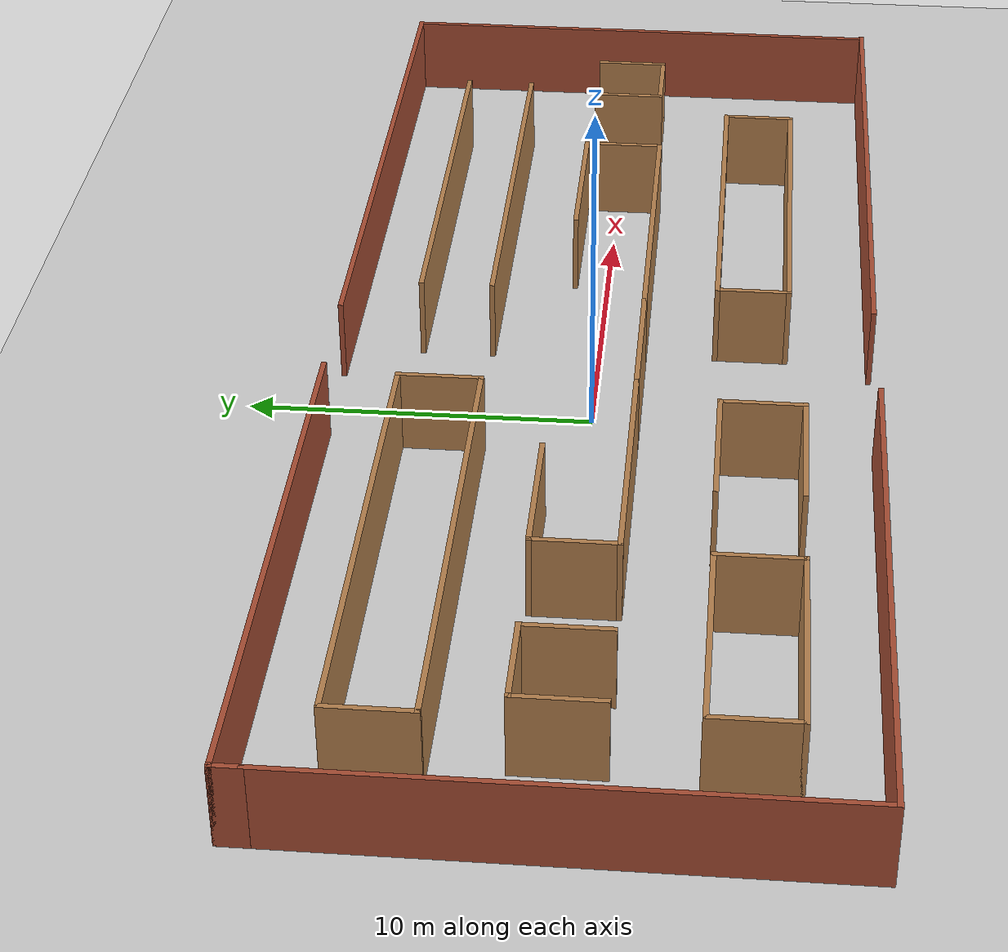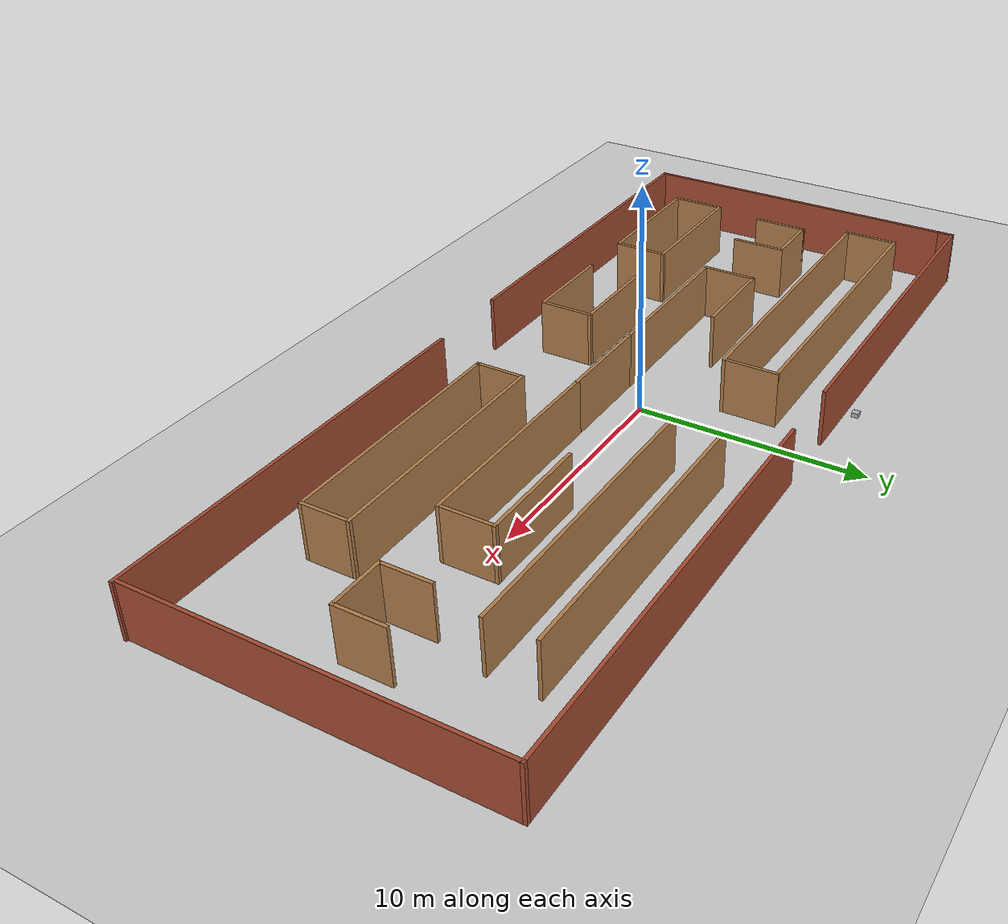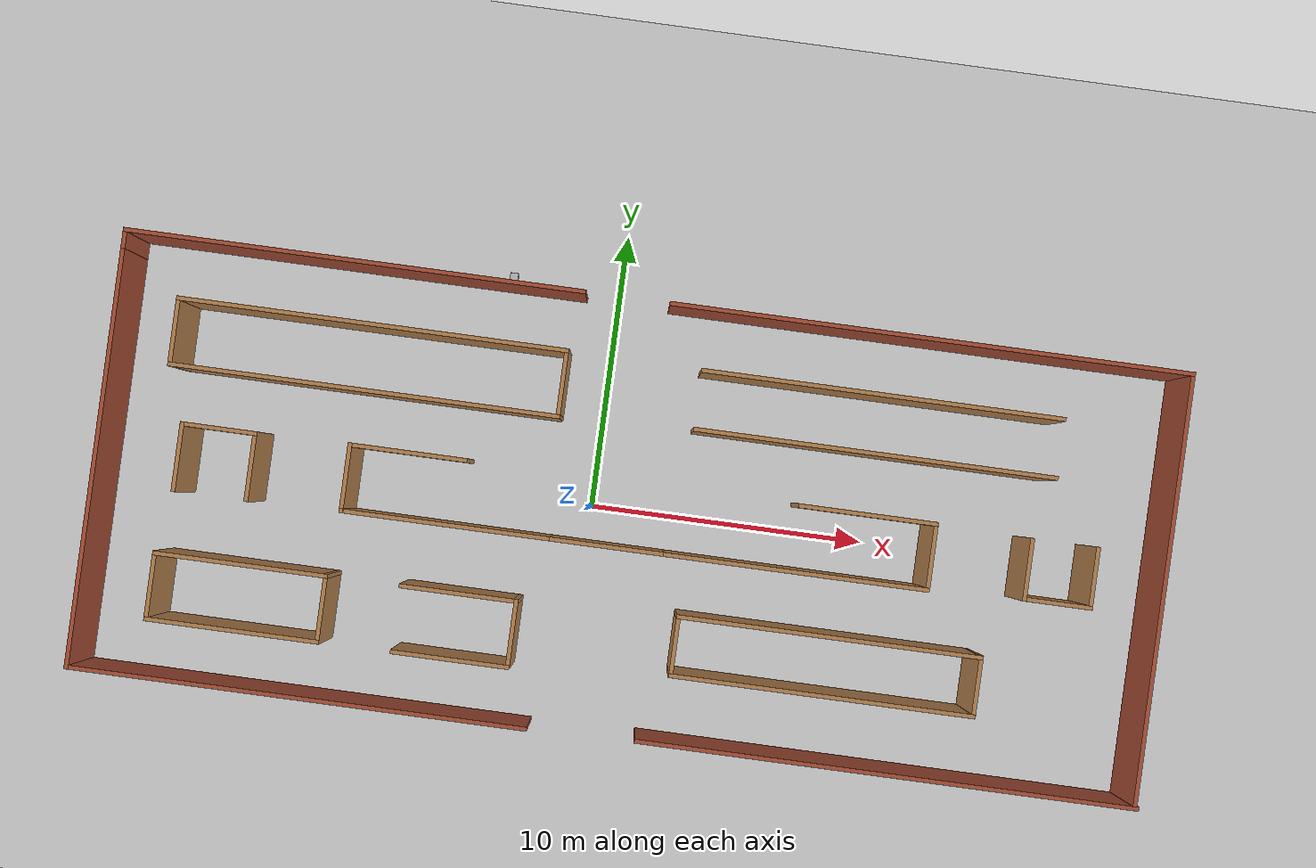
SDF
<?xml version="1.0" ?>
<sdf version="1.6">
    <world name="dynamic_world">
        <include>
            <uri>model://ground_plane</uri>
        </include>

        <include>
            <uri>model://sun</uri>
        </include>

        <scene>
            <shadows>true</shadows>
        </scene>

        <model name="my_world_2">
            <include>
                <uri>model://my_world_2</uri>
            </include>
        </model>

        <model name="DynamicObstacle">
      <pose>-4.0 8.0 0.0 0.000000 0.000000 0.000000</pose>
      <link name="link">
	<gravity>1</gravity>
        <inertial>
	  <inertia>
	    <ixx>0.17</ixx>
            <ixy>0.00</ixy>
            <ixz>0.00</ixz>
            <iyy>0.17</iyy>
            <iyz>0.00</iyz>
            <izz>0.17</izz>
          </inertia>
          <mass>100</mass>
        </inertial>
        <kinematic>false</kinematic>
        <collision name="collision">
          <max_contacts>0</max_contacts>
          <geometry>
            <box>
              <size>0.3 0.3 0.3</size>
            </box>
          </geometry>
	  <surface>
            <friction>
              <ode>
                <mu>0.0</mu>
                <mu2>0.0</mu2>
              </ode>
            </friction>
            <bounce>
              <restitution_coefficient>0.0</restitution_coefficient>
              <threshold>0.0</threshold>
      	  </bounce>
	  <contact>
            <ode>
                <kp>2000000000</kp>
	            <kd>1</kd>
                <max_vel>5.0</max_vel>
                <min_depth>0.00</min_depth>
            </ode>
          </contact>
          </surface>
        </collision>
        <visual name="visual">
          <geometry>
            <box>
              <size>0.3 0.3 0.3</size>
            </box>
          </geometry>
        </visual>
      </link>
    </model>

    </world>
</sdf>
